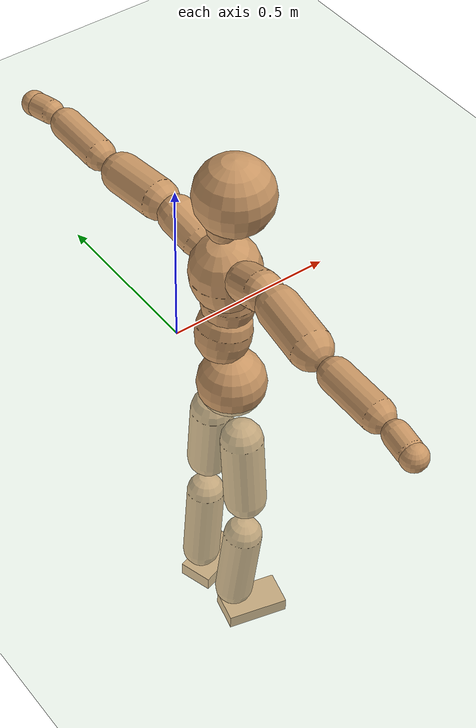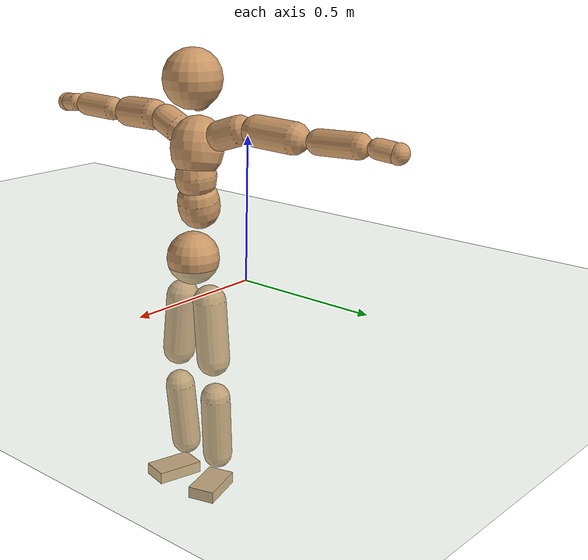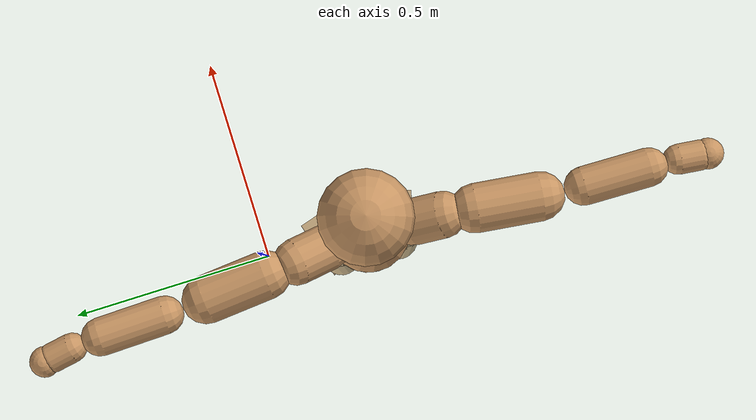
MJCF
<mujoco model="humanoid">
  <compiler coordinate="local"/>
  <default>
    <joint damping="0.0" armature="0.01" stiffness="0.0" limited="true"/>
    <geom conaffinity="1" condim="3" contype="7" margin="0.001" rgba="0.8 0.6 .4 1"/>
  </default>
  <asset>
    <texture type="skybox" builtin="gradient" rgb1=".4 .5 .6" rgb2="0 0 0" width="100" height="100"/>
    <texture builtin="flat" height="1278" mark="cross" markrgb="1 1 1" name="texgeom" random="0.01" rgb1="0.8 0.6 0.4" rgb2="0.8 0.6 0.4" type="cube" width="127"/>
    <texture builtin="checker" height="100" name="texplane" rgb1="0 0 0" rgb2="0.8 0.8 0.8" type="2d" width="100"/>
    <material name="MatPlane" reflectance="0.5" shininess="1" specular="1" texrepeat="60 60" texture="texplane"/>
    <material name="geom" texture="texgeom" texuniform="true"/>
  </asset>
  <worldbody>
    <light cutoff="100" diffuse="1 1 1" dir="-0 0 -1.3" directional="true" exponent="1" pos="0 0 1.3" specular=".1 .1 .1"/>
    <geom conaffinity="1" condim="3" name="floor" pos="0 0 0" rgba="0.8 0.9 0.8 1" size="100 100 .2" type="plane" material="MatPlane"/>
    <body name="Pelvis" pos="-0.0019 -0.2546 0.0289">
      <freejoint name="Pelvis"/>
      <geom type="sphere" contype="1" conaffinity="1" density="500" size="0.0960" pos="0.0000 0.0000 0.0000" name="Pelvis"/>
      <body name="L_Hip" pos="-0.0169 0.058 -0.082">
        <joint name="L_Hip_x" type="hinge" pos="0 0 0" axis="1 0 0" stiffness="800" damping="80" armature="0.02" range="-180.0000 180.0000"/>
        <joint name="L_Hip_y" type="hinge" pos="0 0 0" axis="0 1 0" stiffness="800" damping="80" armature="0.02" range="-180.0000 180.0000"/>
        <joint name="L_Hip_z" type="hinge" pos="0 0 0" axis="0 0 1" stiffness="800" damping="80" armature="0.02" range="-180.0000 180.0000"/>
        <geom type="capsule" contype="1" conaffinity="1" density="500" fromto="0.0017 0.0079 -0.0728 0.0066 0.0317 -0.2912" size="0.0606" name="L_Hip"/>
        <body name="L_Knee" pos="0.0083 0.0396 -0.3641">
          <joint name="L_Knee_x" type="hinge" pos="0 0 0" axis="1 0 0" stiffness="800" damping="80" armature="0.02" range="-180.0000 180.0000"/>
          <joint name="L_Knee_y" type="hinge" pos="0 0 0" axis="0 1 0" stiffness="800" damping="80" armature="0.02" range="-180.0000 180.0000"/>
          <joint name="L_Knee_z" type="hinge" pos="0 0 0" axis="0 0 1" stiffness="800" damping="80" armature="0.02" range="-180.0000 180.0000"/>
          <geom type="capsule" contype="1" conaffinity="1" density="500" fromto="-0.0074 -0.0029 -0.0799 -0.0297 -0.0117 -0.3196" size="0.0547" name="L_Knee"/>
          <body name="L_Ankle" pos="-0.0371 -0.0146 -0.3995">
            <joint name="L_Ankle_x" type="hinge" pos="0 0 0" axis="1 0 0" stiffness="800" damping="80" armature="0.02" range="-180.0000 180.0000"/>
            <joint name="L_Ankle_y" type="hinge" pos="0 0 0" axis="0 1 0" stiffness="800" damping="80" armature="0.02" range="-180.0000 180.0000"/>
            <joint name="L_Ankle_z" type="hinge" pos="0 0 0" axis="0 0 1" stiffness="800" damping="80" armature="0.02" range="-180.0000 180.0000"/>
            <geom type="box" contype="1" conaffinity="1" density="500" pos="0.0605 0.0183 -0.0288" size="0.0871 0.0499 0.0219" quat="0.9892 0.0000 0.0000 0.1463" name="L_Ankle"/>
            <body name="L_Toe" pos="0.121 0.0366 -0.0576">
              <joint name="L_Toe_x" type="hinge" pos="0 0 0" axis="1 0 0" stiffness="500" damping="50" armature="0.02" range="-180.0000 180.0000"/>
              <joint name="L_Toe_y" type="hinge" pos="0 0 0" axis="0 1 0" stiffness="500" damping="50" armature="0.02" range="-180.0000 180.0000"/>
              <joint name="L_Toe_z" type="hinge" pos="0 0 0" axis="0 0 1" stiffness="500" damping="50" armature="0.02" range="-180.0000 180.0000"/>
              <geom type="box" contype="1" conaffinity="1" density="500" pos="0.0000 0.0000 0.0281" size="0.0011 0.0025 0.0011" quat="0.9885 0.0000 0.0000 0.1514" name="L_Toe"/>
            </body>
          </body>
        </body>
      </body>
      <body name="R_Hip" pos="-0.0133 -0.0595 -0.0898">
        <joint name="R_Hip_x" type="hinge" pos="0 0 0" axis="1 0 0" stiffness="800" damping="80" armature="0.02" range="-180.0000 180.0000"/>
        <joint name="R_Hip_y" type="hinge" pos="0 0 0" axis="0 1 0" stiffness="800" damping="80" armature="0.02" range="-180.0000 180.0000"/>
        <joint name="R_Hip_z" type="hinge" pos="0 0 0" axis="0 0 1" stiffness="800" damping="80" armature="0.02" range="-180.0000 180.0000"/>
        <geom type="capsule" contype="1" conaffinity="1" density="500" fromto="-0.0005 -0.0078 -0.0723 -0.0021 -0.0313 -0.2893" size="0.0602" name="R_Hip"/>
        <body name="R_Knee" pos="-0.0026 -0.0391 -0.3616">
          <joint name="R_Knee_x" type="hinge" pos="0 0 0" axis="1 0 0" stiffness="800" damping="80" armature="0.02" range="-180.0000 180.0000"/>
          <joint name="R_Knee_y" type="hinge" pos="0 0 0" axis="0 1 0" stiffness="800" damping="80" armature="0.02" range="-180.0000 180.0000"/>
          <joint name="R_Knee_z" type="hinge" pos="0 0 0" axis="0 0 1" stiffness="800" damping="80" armature="0.02" range="-180.0000 180.0000"/>
          <geom type="capsule" contype="1" conaffinity="1" density="500" fromto="-0.0068 0.0038 -0.0787 -0.0271 0.0150 -0.3146" size="0.055" name="R_Knee"/>
          <body name="R_Ankle" pos="-0.0339 0.0188 -0.3933">
            <joint name="R_Ankle_x" type="hinge" pos="0 0 0" axis="1 0 0" stiffness="800" damping="80" armature="0.02" range="-180.0000 180.0000"/>
            <joint name="R_Ankle_y" type="hinge" pos="0 0 0" axis="0 1 0" stiffness="800" damping="80" armature="0.02" range="-180.0000 180.0000"/>
            <joint name="R_Ankle_z" type="hinge" pos="0 0 0" axis="0 0 1" stiffness="800" damping="80" armature="0.02" range="-180.0000 180.0000"/>
            <geom type="box" contype="1" conaffinity="1" density="500" pos="0.0643 -0.0158 -0.0298" size="0.0887 0.0506 0.0217" quat="0.9928 0.0000 0.0000 -0.1199" name="R_Ankle"/>
            <body name="R_Toe" pos="0.1285 -0.0315 -0.0596">
              <joint name="R_Toe_x" type="hinge" pos="0 0 0" axis="1 0 0" stiffness="500" damping="50" armature="0.02" range="-180.0000 180.0000"/>
              <joint name="R_Toe_y" type="hinge" pos="0 0 0" axis="0 1 0" stiffness="500" damping="50" armature="0.02" range="-180.0000 180.0000"/>
              <joint name="R_Toe_z" type="hinge" pos="0 0 0" axis="0 0 1" stiffness="500" damping="50" armature="0.02" range="-180.0000 180.0000"/>
              <geom type="box" contype="1" conaffinity="1" density="500" pos="0.0000 0.0000 0.0300" size="0.0011 0.0025 0.0011" quat="0.9938 0.0000 0.0000 -0.1109" name="R_Toe"/>
            </body>
          </body>
        </body>
      </body>
      <body name="Torso" pos="-0.037 0.0039 0.1245">
        <joint name="Torso_x" type="hinge" pos="0 0 0" axis="1 0 0" stiffness="1000" damping="100" armature="0.02" range="-180.0000 180.0000"/>
        <joint name="Torso_y" type="hinge" pos="0 0 0" axis="0 1 0" stiffness="1000" damping="100" armature="0.02" range="-180.0000 180.0000"/>
        <joint name="Torso_z" type="hinge" pos="0 0 0" axis="0 0 1" stiffness="1000" damping="100" armature="0.02" range="-180.0000 180.0000"/>
        <geom type="capsule" contype="1" conaffinity="1" density="500" fromto="0.0166 0.0031 0.0848 0.0110 0.0021 0.0566" size="0.075795" name="Torso"/>
        <body name="Spine" pos="0.0276 0.0052 0.1414">
          <joint name="Spine_x" type="hinge" pos="0 0 0" axis="1 0 0" stiffness="1000" damping="100" armature="0.02" range="-180.0000 180.0000"/>
          <joint name="Spine_y" type="hinge" pos="0 0 0" axis="0 1 0" stiffness="1000" damping="100" armature="0.02" range="-180.0000 180.0000"/>
          <joint name="Spine_z" type="hinge" pos="0 0 0" axis="0 0 1" stiffness="1000" damping="100" armature="0.02" range="-180.0000 180.0000"/>
          <geom type="capsule" contype="1" conaffinity="1" density="500" fromto="0.0021 -0.0013 0.0350 0.0014 -0.0009 0.0233" size="0.074586" name="Spine"/>
          <body name="Chest" pos="0.0035 -0.0022 0.0583">
            <joint name="Chest_x" type="hinge" pos="0 0 0" axis="1 0 0" stiffness="1000" damping="100" armature="0.02" range="-180.0000 180.0000"/>
            <joint name="Chest_y" type="hinge" pos="0 0 0" axis="0 1 0" stiffness="1000" damping="100" armature="0.02" range="-180.0000 180.0000"/>
            <joint name="Chest_z" type="hinge" pos="0 0 0" axis="0 0 1" stiffness="1000" damping="100" armature="0.02" range="-180.0000 180.0000"/>
            <geom type="capsule" contype="1" conaffinity="1" density="500" fromto="-0.0182 -0.0054 0.0904 -0.0121 -0.0036 0.0603" size="0.095325" name="Chest"/>
            <body name="Neck" pos="-0.0424 -0.0145 0.2206">
              <joint name="Neck_x" type="hinge" pos="0 0 0" axis="1 0 0" stiffness="500" damping="50" armature="0.02" range="-180.0000 180.0000"/>
              <joint name="Neck_y" type="hinge" pos="0 0 0" axis="0 1 0" stiffness="500" damping="50" armature="0.02" range="-180.0000 180.0000"/>
              <joint name="Neck_z" type="hinge" pos="0 0 0" axis="0 0 1" stiffness="500" damping="50" armature="0.02" range="-180.0000 180.0000"/>
              <geom type="capsule" contype="1" conaffinity="1" density="500" fromto="0.0097 0.0018 0.0183 0.0389 0.0074 0.0732" size="0.043059" name="Neck"/>
              <body name="Head" pos="0.0486 0.0092 0.0915">
                <joint name="Head_x" type="hinge" pos="0 0 0" axis="1 0 0" stiffness="500" damping="50" armature="0.02" range="-180.0000 180.0000"/>
                <joint name="Head_y" type="hinge" pos="0 0 0" axis="0 1 0" stiffness="500" damping="50" armature="0.02" range="-180.0000 180.0000"/>
                <joint name="Head_z" type="hinge" pos="0 0 0" axis="0 0 1" stiffness="500" damping="50" armature="0.02" range="-180.0000 180.0000"/>
                <geom type="sphere" contype="1" conaffinity="1" density="500" size="0.1060" pos="0.0000 0.0000 0.0000" name="Head"/>
              </body>
            </body>
            <body name="L_Thorax" pos="-0.0217 0.0705 0.1161">
              <joint name="L_Thorax_x" type="hinge" pos="0 0 0" axis="1 0 0" stiffness="500" damping="50" armature="0.02" range="-180.0000 180.0000"/>
              <joint name="L_Thorax_y" type="hinge" pos="0 0 0" axis="0 1 0" stiffness="500" damping="50" armature="0.02" range="-180.0000 180.0000"/>
              <joint name="L_Thorax_z" type="hinge" pos="0 0 0" axis="0 0 1" stiffness="500" damping="50" armature="0.02" range="-180.0000 180.0000"/>
              <geom type="capsule" contype="1" conaffinity="1" density="500" fromto="-0.0038 0.0249 0.0084 -0.0153 0.0995 0.0336" size="0.0533" name="L_Thorax"/>
              <body name="L_Shoulder" pos="-0.0191 0.1244 0.042">
                <joint name="L_Shoulder_x" type="hinge" pos="0 0 0" axis="1 0 0" stiffness="500" damping="50" armature="0.02" range="-720.0000 720.0000"/>
                <joint name="L_Shoulder_y" type="hinge" pos="0 0 0" axis="0 1 0" stiffness="500" damping="50" armature="0.02" range="-720.0000 720.0000"/>
                <joint name="L_Shoulder_z" type="hinge" pos="0 0 0" axis="0 0 1" stiffness="500" damping="50" armature="0.02" range="-720.0000 720.0000"/>
                <geom type="capsule" contype="1" conaffinity="1" density="500" fromto="-0.0041 0.0482 -0.0024 -0.0166 0.1926 -0.0097" size="0.0553" name="L_Shoulder"/>
                <body name="L_Elbow" pos="-0.0207 0.2408 -0.0121">
                  <joint name="L_Elbow_x" type="hinge" pos="0 0 0" axis="1 0 0" stiffness="500" damping="50" armature="0.02" range="-720.0000 720.0000"/>
                  <joint name="L_Elbow_y" type="hinge" pos="0 0 0" axis="0 1 0" stiffness="500" damping="50" armature="0.02" range="-720.0000 720.0000"/>
                  <joint name="L_Elbow_z" type="hinge" pos="0 0 0" axis="0 0 1" stiffness="500" damping="50" armature="0.02" range="-720.0000 720.0000"/>
                  <geom type="capsule" contype="1" conaffinity="1" density="500" fromto="-0.0013 0.0503 0.0021 -0.0054 0.2010 0.0084" size="0.0433" name="L_Elbow"/>
                  <body name="L_Wrist" pos="-0.0067 0.2513 0.0105">
                    <joint name="L_Wrist_x" type="hinge" pos="0 0 0" axis="1 0 0" stiffness="300" damping="30" armature="0.02" range="-180.0000 180.0000"/>
                    <joint name="L_Wrist_y" type="hinge" pos="0 0 0" axis="0 1 0" stiffness="300" damping="30" armature="0.02" range="-180.0000 180.0000"/>
                    <joint name="L_Wrist_z" type="hinge" pos="0 0 0" axis="0 0 1" stiffness="300" damping="30" armature="0.02" range="-180.0000 180.0000"/>
                    <geom type="capsule" contype="1" conaffinity="1" density="500" fromto="-0.0030 0.0170 -0.0021 -0.0119 0.0679 -0.0083" size="0.0338" name="L_Wrist"/>
                    <body name="L_Hand" pos="-0.0149 0.0849 -0.0104">
                      <joint name="L_Hand_x" type="hinge" pos="0 0 0" axis="1 0 0" stiffness="300" damping="30" armature="0.02" range="-180.0000 180.0000"/>
                      <joint name="L_Hand_y" type="hinge" pos="0 0 0" axis="0 1 0" stiffness="300" damping="30" armature="0.02" range="-180.0000 180.0000"/>
                      <joint name="L_Hand_z" type="hinge" pos="0 0 0" axis="0 0 1" stiffness="300" damping="30" armature="0.02" range="-180.0000 180.0000"/>
                      <geom type="sphere" contype="1" conaffinity="1" density="500" size="0.0350" pos="0.0000 0.0000 0.0000" name="L_Hand"/>
                    </body>
                  </body>
                </body>
              </body>
            </body>
            <body name="R_Thorax" pos="-0.0268 -0.0829 0.1152">
              <joint name="R_Thorax_x" type="hinge" pos="0 0 0" axis="1 0 0" stiffness="500" damping="50" armature="0.02" range="-180.0000 180.0000"/>
              <joint name="R_Thorax_y" type="hinge" pos="0 0 0" axis="0 1 0" stiffness="500" damping="50" armature="0.02" range="-180.0000 180.0000"/>
              <joint name="R_Thorax_z" type="hinge" pos="0 0 0" axis="0 0 1" stiffness="500" damping="50" armature="0.02" range="-180.0000 180.0000"/>
              <geom type="capsule" contype="1" conaffinity="1" density="500" fromto="-0.0018 -0.0228 0.0088 -0.0070 -0.0913 0.0351" size="0.0533" name="R_Thorax"/>
              <body name="R_Shoulder" pos="-0.0088 -0.1142 0.0439">
                <joint name="R_Shoulder_x" type="hinge" pos="0 0 0" axis="1 0 0" stiffness="500" damping="50" armature="0.02" range="-720.0000 720.0000"/>
                <joint name="R_Shoulder_y" type="hinge" pos="0 0 0" axis="0 1 0" stiffness="500" damping="50" armature="0.02" range="-720.0000 720.0000"/>
                <joint name="R_Shoulder_z" type="hinge" pos="0 0 0" axis="0 0 1" stiffness="500" damping="50" armature="0.02" range="-720.0000 720.0000"/>
                <geom type="capsule" contype="1" conaffinity="1" density="500" fromto="-0.0059 -0.0491 -0.0020 -0.0236 -0.1964 -0.0080" size="0.0561" name="R_Shoulder"/>
                <body name="R_Elbow" pos="-0.0294 -0.2455 -0.0099">
                  <joint name="R_Elbow_x" type="hinge" pos="0 0 0" axis="1 0 0" stiffness="500" damping="50" armature="0.02" range="-720.0000 720.0000"/>
                  <joint name="R_Elbow_y" type="hinge" pos="0 0 0" axis="0 1 0" stiffness="500" damping="50" armature="0.02" range="-720.0000 720.0000"/>
                  <joint name="R_Elbow_z" type="hinge" pos="0 0 0" axis="0 0 1" stiffness="500" damping="50" armature="0.02" range="-720.0000 720.0000"/>
                  <geom type="capsule" contype="1" conaffinity="1" density="500" fromto="-0.0010 -0.0507 0.0007 -0.0041 -0.2026 0.0030" size="0.044" name="R_Elbow"/>
                  <body name="R_Wrist" pos="-0.0051 -0.2533 0.0037">
                    <joint name="R_Wrist_x" type="hinge" pos="0 0 0" axis="1 0 0" stiffness="300" damping="30" armature="0.02" range="-180.0000 180.0000"/>
                    <joint name="R_Wrist_y" type="hinge" pos="0 0 0" axis="0 1 0" stiffness="300" damping="30" armature="0.02" range="-180.0000 180.0000"/>
                    <joint name="R_Wrist_z" type="hinge" pos="0 0 0" axis="0 0 1" stiffness="300" damping="30" armature="0.02" range="-180.0000 180.0000"/>
                    <geom type="capsule" contype="1" conaffinity="1" density="500" fromto="-0.0019 -0.0174 -0.0017 -0.0076 -0.0697 -0.0067" size="0.0345" name="R_Wrist"/>
                    <body name="R_Hand" pos="-0.0095 -0.0871 -0.0084">
                      <joint name="R_Hand_x" type="hinge" pos="0 0 0" axis="1 0 0" stiffness="300" damping="30" armature="0.02" range="-180.0000 180.0000"/>
                      <joint name="R_Hand_y" type="hinge" pos="0 0 0" axis="0 1 0" stiffness="300" damping="30" armature="0.02" range="-180.0000 180.0000"/>
                      <joint name="R_Hand_z" type="hinge" pos="0 0 0" axis="0 0 1" stiffness="300" damping="30" armature="0.02" range="-180.0000 180.0000"/>
                      <geom type="sphere" contype="1" conaffinity="1" density="500" size="0.0355" pos="0.0000 0.0000 0.0000" name="R_Hand"/>
                    </body>
                  </body>
                </body>
              </body>
            </body>
          </body>
        </body>
      </body>
    </body>
  </worldbody>
  <actuator>
    <motor name="L_Hip_x" joint="L_Hip_x" gear="500"/>
    <motor name="L_Hip_y" joint="L_Hip_y" gear="500"/>
    <motor name="L_Hip_z" joint="L_Hip_z" gear="500"/>
    <motor name="L_Knee_x" joint="L_Knee_x" gear="500"/>
    <motor name="L_Knee_y" joint="L_Knee_y" gear="500"/>
    <motor name="L_Knee_z" joint="L_Knee_z" gear="500"/>
    <motor name="L_Ankle_x" joint="L_Ankle_x" gear="500"/>
    <motor name="L_Ankle_y" joint="L_Ankle_y" gear="500"/>
    <motor name="L_Ankle_z" joint="L_Ankle_z" gear="500"/>
    <motor name="L_Toe_x" joint="L_Toe_x" gear="500"/>
    <motor name="L_Toe_y" joint="L_Toe_y" gear="500"/>
    <motor name="L_Toe_z" joint="L_Toe_z" gear="500"/>
    <motor name="R_Hip_x" joint="R_Hip_x" gear="500"/>
    <motor name="R_Hip_y" joint="R_Hip_y" gear="500"/>
    <motor name="R_Hip_z" joint="R_Hip_z" gear="500"/>
    <motor name="R_Knee_x" joint="R_Knee_x" gear="500"/>
    <motor name="R_Knee_y" joint="R_Knee_y" gear="500"/>
    <motor name="R_Knee_z" joint="R_Knee_z" gear="500"/>
    <motor name="R_Ankle_x" joint="R_Ankle_x" gear="500"/>
    <motor name="R_Ankle_y" joint="R_Ankle_y" gear="500"/>
    <motor name="R_Ankle_z" joint="R_Ankle_z" gear="500"/>
    <motor name="R_Toe_x" joint="R_Toe_x" gear="500"/>
    <motor name="R_Toe_y" joint="R_Toe_y" gear="500"/>
    <motor name="R_Toe_z" joint="R_Toe_z" gear="500"/>
    <motor name="Torso_x" joint="Torso_x" gear="500"/>
    <motor name="Torso_y" joint="Torso_y" gear="500"/>
    <motor name="Torso_z" joint="Torso_z" gear="500"/>
    <motor name="Spine_x" joint="Spine_x" gear="500"/>
    <motor name="Spine_y" joint="Spine_y" gear="500"/>
    <motor name="Spine_z" joint="Spine_z" gear="500"/>
    <motor name="Chest_x" joint="Chest_x" gear="500"/>
    <motor name="Chest_y" joint="Chest_y" gear="500"/>
    <motor name="Chest_z" joint="Chest_z" gear="500"/>
    <motor name="Neck_x" joint="Neck_x" gear="500"/>
    <motor name="Neck_y" joint="Neck_y" gear="500"/>
    <motor name="Neck_z" joint="Neck_z" gear="500"/>
    <motor name="Head_x" joint="Head_x" gear="500"/>
    <motor name="Head_y" joint="Head_y" gear="500"/>
    <motor name="Head_z" joint="Head_z" gear="500"/>
    <motor name="L_Thorax_x" joint="L_Thorax_x" gear="500"/>
    <motor name="L_Thorax_y" joint="L_Thorax_y" gear="500"/>
    <motor name="L_Thorax_z" joint="L_Thorax_z" gear="500"/>
    <motor name="L_Shoulder_x" joint="L_Shoulder_x" gear="500"/>
    <motor name="L_Shoulder_y" joint="L_Shoulder_y" gear="500"/>
    <motor name="L_Shoulder_z" joint="L_Shoulder_z" gear="500"/>
    <motor name="L_Elbow_x" joint="L_Elbow_x" gear="500"/>
    <motor name="L_Elbow_y" joint="L_Elbow_y" gear="500"/>
    <motor name="L_Elbow_z" joint="L_Elbow_z" gear="500"/>
    <motor name="L_Wrist_x" joint="L_Wrist_x" gear="500"/>
    <motor name="L_Wrist_y" joint="L_Wrist_y" gear="500"/>
    <motor name="L_Wrist_z" joint="L_Wrist_z" gear="500"/>
    <motor name="L_Hand_x" joint="L_Hand_x" gear="500"/>
    <motor name="L_Hand_y" joint="L_Hand_y" gear="500"/>
    <motor name="L_Hand_z" joint="L_Hand_z" gear="500"/>
    <motor name="R_Thorax_x" joint="R_Thorax_x" gear="500"/>
    <motor name="R_Thorax_y" joint="R_Thorax_y" gear="500"/>
    <motor name="R_Thorax_z" joint="R_Thorax_z" gear="500"/>
    <motor name="R_Shoulder_x" joint="R_Shoulder_x" gear="500"/>
    <motor name="R_Shoulder_y" joint="R_Shoulder_y" gear="500"/>
    <motor name="R_Shoulder_z" joint="R_Shoulder_z" gear="500"/>
    <motor name="R_Elbow_x" joint="R_Elbow_x" gear="500"/>
    <motor name="R_Elbow_y" joint="R_Elbow_y" gear="500"/>
    <motor name="R_Elbow_z" joint="R_Elbow_z" gear="500"/>
    <motor name="R_Wrist_x" joint="R_Wrist_x" gear="500"/>
    <motor name="R_Wrist_y" joint="R_Wrist_y" gear="500"/>
    <motor name="R_Wrist_z" joint="R_Wrist_z" gear="500"/>
    <motor name="R_Hand_x" joint="R_Hand_x" gear="500"/>
    <motor name="R_Hand_y" joint="R_Hand_y" gear="500"/>
    <motor name="R_Hand_z" joint="R_Hand_z" gear="500"/>
  </actuator>
  <contact>
    <exclude body1="Torso" body2="Chest"/>
    <exclude body1="Head" body2="Chest"/>
    <exclude body1="R_Knee" body2="R_Toe"/>
    <exclude body1="R_Knee" body2="L_Ankle"/>
    <exclude body1="R_Knee" body2="L_Toe"/>
    <exclude body1="L_Knee" body2="L_Toe"/>
    <exclude body1="L_Knee" body2="R_Ankle"/>
    <exclude body1="L_Knee" body2="R_Toe"/>
    <exclude body1="L_Shoulder" body2="Chest"/>
    <exclude body1="R_Shoulder" body2="Chest"/>
  </contact>
  <sensor/>
  <size njmax="700" nconmax="700"/>
</mujoco>
